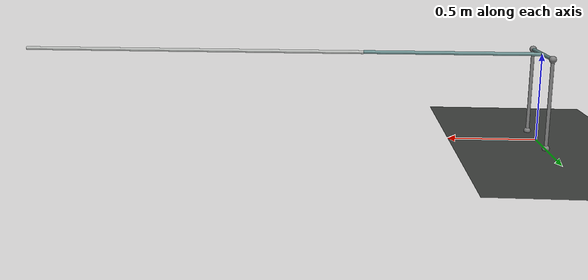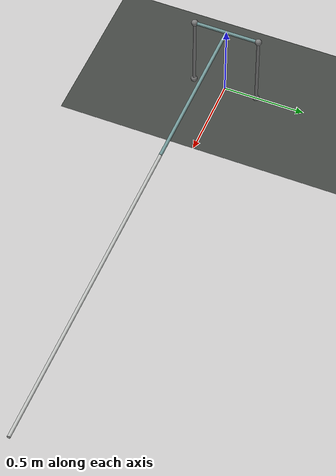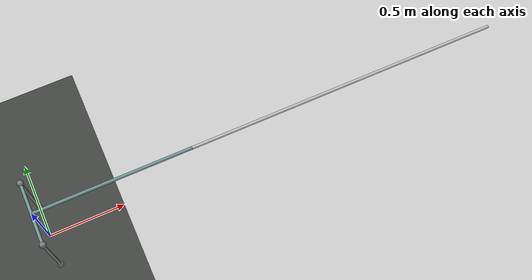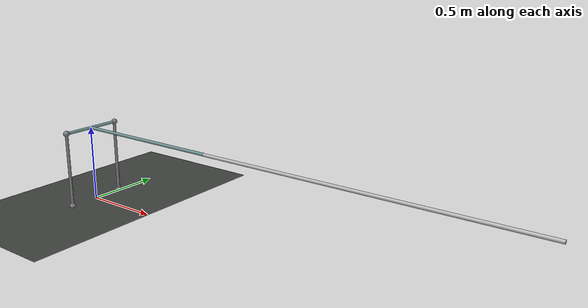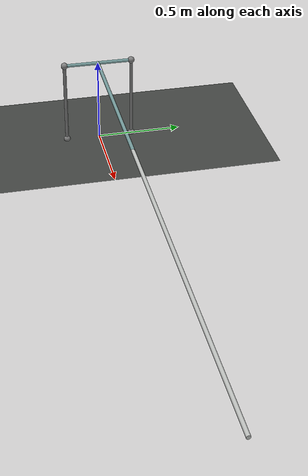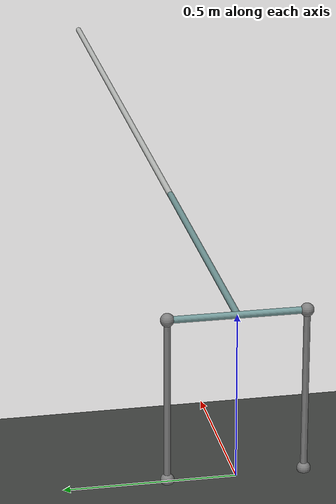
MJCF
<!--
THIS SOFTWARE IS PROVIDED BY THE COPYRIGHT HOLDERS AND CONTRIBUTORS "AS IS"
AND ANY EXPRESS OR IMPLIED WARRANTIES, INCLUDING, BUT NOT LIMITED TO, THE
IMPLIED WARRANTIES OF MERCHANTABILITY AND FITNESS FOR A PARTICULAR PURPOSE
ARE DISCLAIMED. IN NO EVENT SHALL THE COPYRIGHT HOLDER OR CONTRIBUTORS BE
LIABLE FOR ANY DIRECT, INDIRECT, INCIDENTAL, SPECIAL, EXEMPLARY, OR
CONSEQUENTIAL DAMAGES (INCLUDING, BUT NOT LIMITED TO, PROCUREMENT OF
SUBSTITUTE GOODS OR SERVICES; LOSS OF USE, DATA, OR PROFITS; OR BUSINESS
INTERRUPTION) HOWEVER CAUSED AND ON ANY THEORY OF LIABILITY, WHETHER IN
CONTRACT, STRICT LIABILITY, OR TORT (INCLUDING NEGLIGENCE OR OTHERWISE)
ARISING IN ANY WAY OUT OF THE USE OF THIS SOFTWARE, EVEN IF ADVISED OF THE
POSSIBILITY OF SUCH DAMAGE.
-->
<mujoco model="inverted pendulum">
	<compiler 	angle="radian"/>

	<option	timestep="0.0001"
			   iterations="20"
			   gravity="0 0 -9.81"
			   integrator="RK4">
		<flag sensornoise="disable"/>
	</option>

	<default>
		<geom  rgba="0.45 0.6 0.6 1"/>
		<site type="sphere" size="0.02"/>
	</default>
	<worldbody>

		<light directional="true" cutoff="4" exponent="20" diffuse="1 1 1" specular="0 0 0" pos=".9 .3 2.5" dir="-.9 -.3 -2.5 "/>

		<!-- ======= Ground ======= -->
		<geom name="ground" type="plane" pos="0 0 0" size="0.5 1 2" rgba=" .25 .26 .25 1" contype="0" conaffinity="0"/>
		<site name="rFix" pos="0 -.2 .005"/>
		<site name="lFix" pos="0 .2 .005"/>

		<!-- ======= Beam ======= -->
		<body name="rod1body" pos="0 0 0.5">
			<geom name="rod1geom" type="cylinder" pos="0.5 0 0" size=".01 0.5" mass="1" euler="0 1.57 0"/>
			<geom pos="0 0 0" type="capsule" size=".01 .2" euler="1.57 0 0"/>
			<joint name="passive" pos="0 0 0.0" axis="0 -1 0" limited="false"/>
			<site name="rBeam" pos="0 -.2 0"/>
			<site name="lBeam" pos="0 .2 0"/>
			<body name="rod2body">
				<geom name="rod2geom" type="cylinder" pos="2 0 0" size=".01 1" mass="1" euler="0 1.57 0" rgba=" .75 .76 .75 1"/>
				<joint name="active" pos="1 0 0" axis="0 -1 0" limited="false"/>
			</body>
		</body>
	</worldbody>

	<tendon>
		<spatial name="lThread" width="0.01">
			<site site="lBeam"/>
			<site site="lFix"/>
		</spatial>

		<spatial name="rThread"  width="0.01">
			<site site="rBeam"/>
			<site site="rFix"/>
		</spatial>

	</tendon>

	<actuator>
		<motor joint='active' name='motor' forcelimited="false"/>
	</actuator>

</mujoco>
